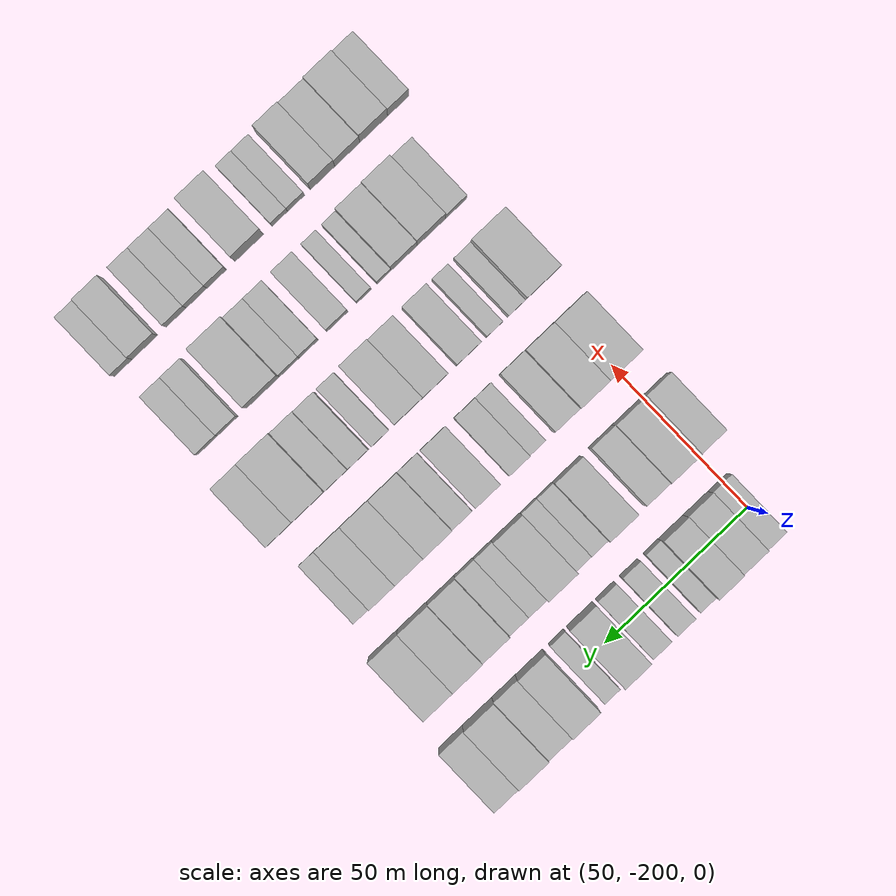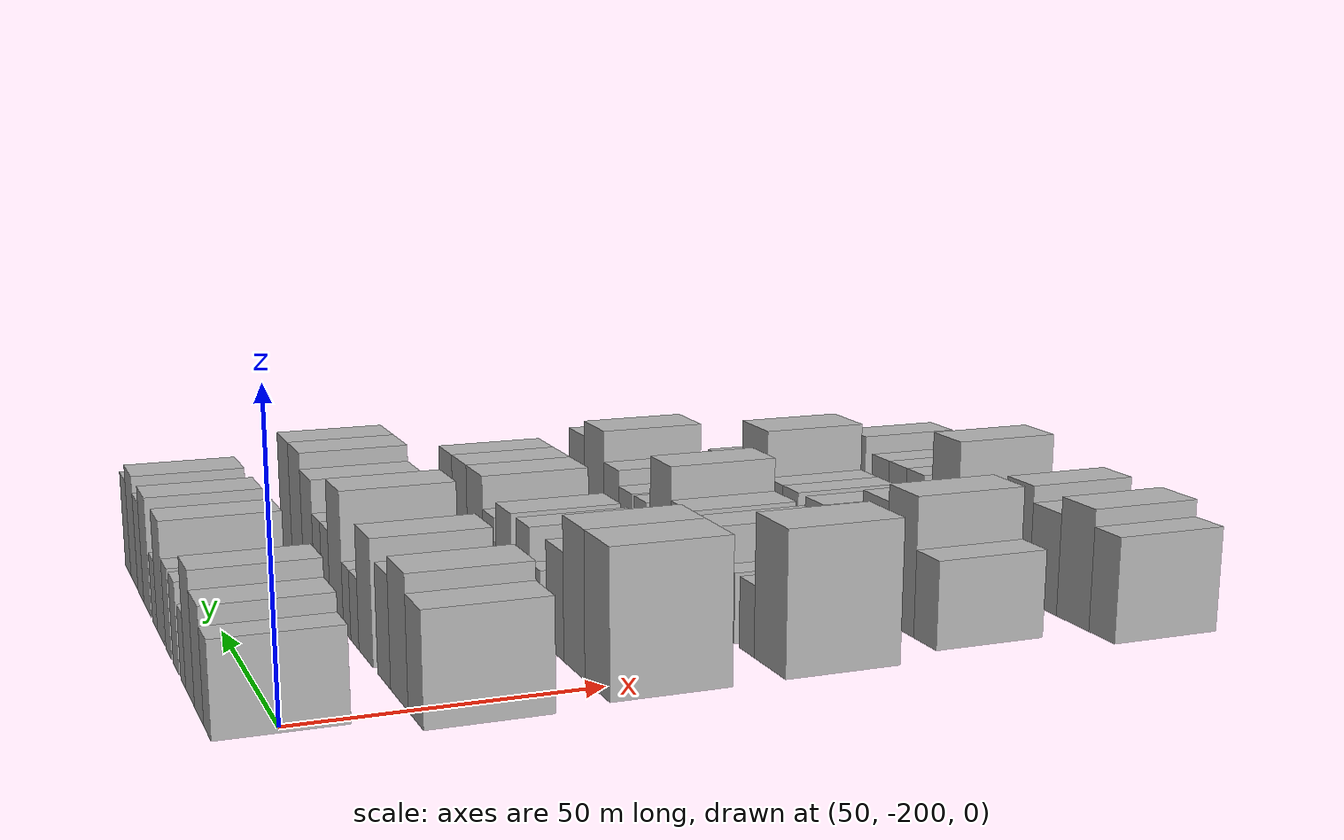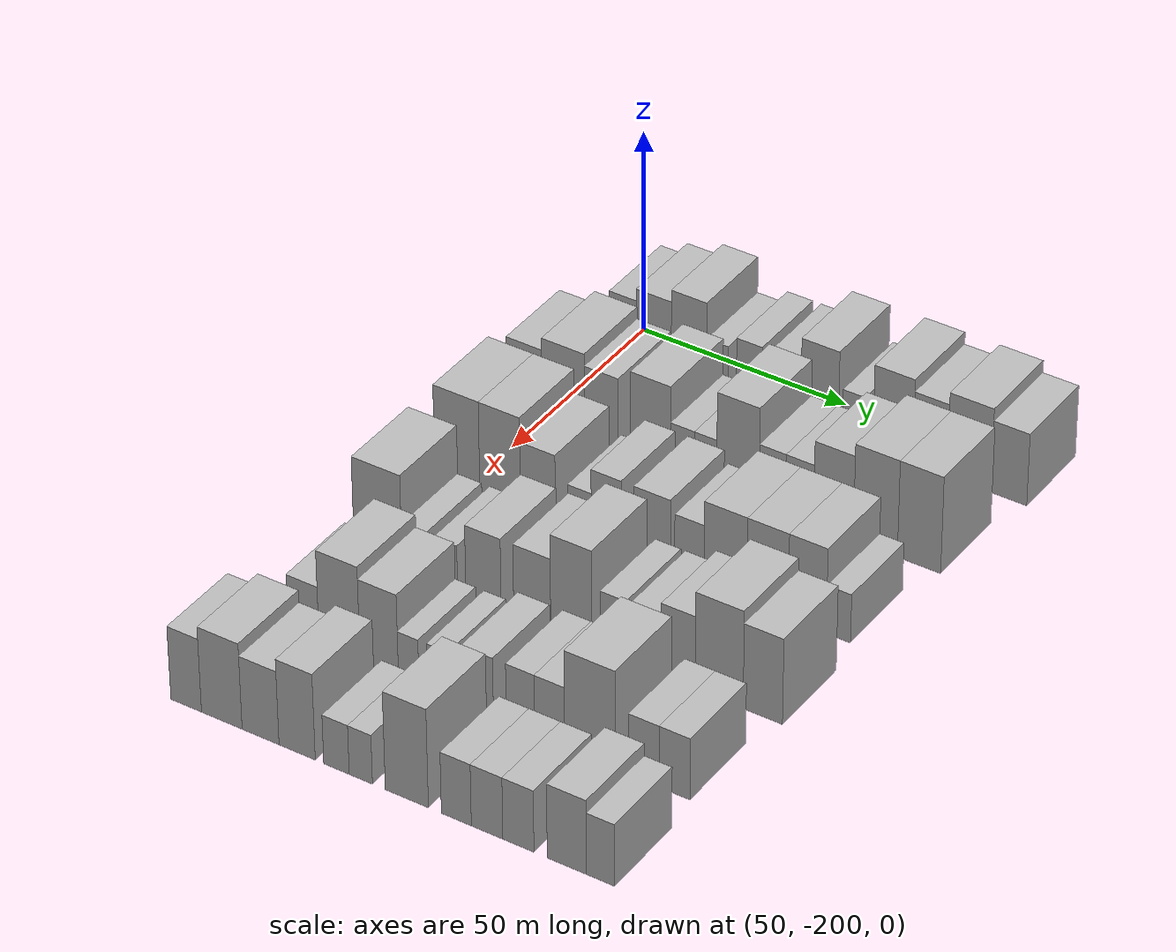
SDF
<sdf version="1.6">
 <world name="default">
  <model name="building_35">
   <static>1</static>
   <pose>50.0000 -198.8877 0 0.000000 0.000000 0.000000</pose>
   <link name="link">
    <pose>0 0 7.50 0 0 0</pose>
    <collision name="collision"><geometry><box><size>20.0000 6.6442 15.0000</size></box></geometry></collision>
    <visual name="visual">
     <cast_shadows>0</cast_shadows>
     <geometry><box><size>20.0000 6.6442 15.0000</size></box></geometry>
     <material>
      <script>
       <uri>model://HANNAS_wall/materials/scripts</uri>
       <uri>model://HANNAS_wall/materials/textures</uri>
       <name>vrc/HANNAS_wall</name>
      </script>
     </material>
    </visual>
   </link>
  </model>
  <model name="building_36">
   <static>1</static>
   <pose>50.0000 -191.1998 0 0.000000 0.000000 0.000000</pose>
   <link name="link">
    <pose>0 0 9.00 0 0 0</pose>
    <collision name="collision"><geometry><box><size>20.0000 8.7317 18.0000</size></box></geometry></collision>
    <visual name="visual">
     <cast_shadows>0</cast_shadows>
     <geometry><box><size>20.0000 8.7317 18.0000</size></box></geometry>
     <material>
      <script>
       <uri>model://HANNAS_wall/materials/scripts</uri>
       <uri>model://HANNAS_wall/materials/textures</uri>
       <name>vrc/HANNAS_wall</name>
      </script>
     </material>
    </visual>
   </link>
  </model>
  <model name="building_37">
   <static>1</static>
   <pose>50.0000 -182.4691 0 0.000000 0.000000 0.000000</pose>
   <link name="link">
    <pose>0 0 10.50 0 0 0</pose>
    <collision name="collision"><geometry><box><size>20.0000 8.7298 21.0000</size></box></geometry></collision>
    <visual name="visual">
     <cast_shadows>0</cast_shadows>
     <geometry><box><size>20.0000 8.7298 21.0000</size></box></geometry>
     <material>
      <script>
       <uri>model://HANNAS_wall/materials/scripts</uri>
       <uri>model://HANNAS_wall/materials/textures</uri>
       <name>vrc/HANNAS_wall</name>
      </script>
     </material>
    </visual>
   </link>
  </model>
  <model name="building_38">
   <static>1</static>
   <pose>50.0000 -175.4326 0 0.000000 0.000000 0.000000</pose>
   <link name="link">
    <pose>0 0 6.00 0 0 0</pose>
    <collision name="collision"><geometry><box><size>20.0000 5.3432 12.0000</size></box></geometry></collision>
    <visual name="visual">
     <cast_shadows>0</cast_shadows>
     <geometry><box><size>20.0000 5.3432 12.0000</size></box></geometry>
     <material>
      <script>
       <uri>model://HANNAS_wall/materials/scripts</uri>
       <uri>model://HANNAS_wall/materials/textures</uri>
       <name>vrc/HANNAS_wall</name>
      </script>
     </material>
    </visual>
   </link>
  </model>
  <model name="building_39">
   <static>1</static>
   <pose>50.0000 -167.6293 0 0.000000 0.000000 0.000000</pose>
   <link name="link">
    <pose>0 0 7.50 0 0 0</pose>
    <collision name="collision"><geometry><box><size>20.0000 6.2633 15.0000</size></box></geometry></collision>
    <visual name="visual">
     <cast_shadows>0</cast_shadows>
     <geometry><box><size>20.0000 6.2633 15.0000</size></box></geometry>
     <material>
      <script>
       <uri>model://HANNAS_wall/materials/scripts</uri>
       <uri>model://HANNAS_wall/materials/textures</uri>
       <name>vrc/HANNAS_wall</name>
      </script>
     </material>
    </visual>
   </link>
  </model>
  <model name="building_40">
   <static>1</static>
   <pose>50.0000 -159.2692 0 0.000000 0.000000 0.000000</pose>
   <link name="link">
    <pose>0 0 7.50 0 0 0</pose>
    <collision name="collision"><geometry><box><size>20.0000 6.4569 15.0000</size></box></geometry></collision>
    <visual name="visual">
     <cast_shadows>0</cast_shadows>
     <geometry><box><size>20.0000 6.4569 15.0000</size></box></geometry>
     <material>
      <script>
       <uri>model://HANNAS_wall/materials/scripts</uri>
       <uri>model://HANNAS_wall/materials/textures</uri>
       <name>vrc/HANNAS_wall</name>
      </script>
     </material>
    </visual>
   </link>
  </model>
  <model name="building_41">
   <static>1</static>
   <pose>50.0000 -150.4861 0 0.000000 0.000000 0.000000</pose>
   <link name="link">
    <pose>0 0 10.50 0 0 0</pose>
    <collision name="collision"><geometry><box><size>20.0000 9.1092 21.0000</size></box></geometry></collision>
    <visual name="visual">
     <cast_shadows>0</cast_shadows>
     <geometry><box><size>20.0000 9.1092 21.0000</size></box></geometry>
     <material>
      <script>
       <uri>model://HANNAS_wall/materials/scripts</uri>
       <uri>model://HANNAS_wall/materials/textures</uri>
       <name>vrc/HANNAS_wall</name>
      </script>
     </material>
    </visual>
   </link>
  </model>
  <model name="building_42">
   <static>1</static>
   <pose>50.0000 -142.2494 0 0.000000 0.000000 0.000000</pose>
   <link name="link">
    <pose>0 0 6.00 0 0 0</pose>
    <collision name="collision"><geometry><box><size>20.0000 5.3642 12.0000</size></box></geometry></collision>
    <visual name="visual">
     <cast_shadows>0</cast_shadows>
     <geometry><box><size>20.0000 5.3642 12.0000</size></box></geometry>
     <material>
      <script>
       <uri>model://HANNAS_wall/materials/scripts</uri>
       <uri>model://HANNAS_wall/materials/textures</uri>
       <name>vrc/HANNAS_wall</name>
      </script>
     </material>
    </visual>
   </link>
  </model>
  <model name="building_43">
   <static>1</static>
   <pose>50.0000 -132.7815 0 0.000000 0.000000 0.000000</pose>
   <link name="link">
    <pose>0 0 10.50 0 0 0</pose>
    <collision name="collision"><geometry><box><size>20.0000 9.5715 21.0000</size></box></geometry></collision>
    <visual name="visual">
     <cast_shadows>0</cast_shadows>
     <geometry><box><size>20.0000 9.5715 21.0000</size></box></geometry>
     <material>
      <script>
       <uri>model://HANNAS_wall/materials/scripts</uri>
       <uri>model://HANNAS_wall/materials/textures</uri>
       <name>vrc/HANNAS_wall</name>
      </script>
     </material>
    </visual>
   </link>
  </model>
  <model name="building_44">
   <static>1</static>
   <pose>50.0000 -123.9047 0 0.000000 0.000000 0.000000</pose>
   <link name="link">
    <pose>0 0 9.00 0 0 0</pose>
    <collision name="collision"><geometry><box><size>20.0000 8.1821 18.0000</size></box></geometry></collision>
    <visual name="visual">
     <cast_shadows>0</cast_shadows>
     <geometry><box><size>20.0000 8.1821 18.0000</size></box></geometry>
     <material>
      <script>
       <uri>model://HANNAS_wall/materials/scripts</uri>
       <uri>model://HANNAS_wall/materials/textures</uri>
       <name>vrc/HANNAS_wall</name>
      </script>
     </material>
    </visual>
   </link>
  </model>
  <model name="building_45">
   <static>1</static>
   <pose>50.0000 -114.6508 0 0.000000 0.000000 0.000000</pose>
   <link name="link">
    <pose>0 0 10.50 0 0 0</pose>
    <collision name="collision"><geometry><box><size>20.0000 10.3257 21.0000</size></box></geometry></collision>
    <visual name="visual">
     <cast_shadows>0</cast_shadows>
     <geometry><box><size>20.0000 10.3257 21.0000</size></box></geometry>
     <material>
      <script>
       <uri>model://HANNAS_wall/materials/scripts</uri>
       <uri>model://HANNAS_wall/materials/textures</uri>
       <name>vrc/HANNAS_wall</name>
      </script>
     </material>
    </visual>
   </link>
  </model>
  <model name="building_46">
   <static>1</static>
   <pose>50.0000 -105.2731 0 0.000000 0.000000 0.000000</pose>
   <link name="link">
    <pose>0 0 9.00 0 0 0</pose>
    <collision name="collision"><geometry><box><size>20.0000 8.4298 18.0000</size></box></geometry></collision>
    <visual name="visual">
     <cast_shadows>0</cast_shadows>
     <geometry><box><size>20.0000 8.4298 18.0000</size></box></geometry>
     <material>
      <script>
       <uri>model://HANNAS_wall/materials/scripts</uri>
       <uri>model://HANNAS_wall/materials/textures</uri>
       <name>vrc/HANNAS_wall</name>
      </script>
     </material>
    </visual>
   </link>
  </model>
  <model name="building_153">
   <static>1</static>
   <pose>79.0000 -204.3368 0 0.000000 0.000000 0.000000</pose>
   <link name="link">
    <pose>0 0 9.00 0 0 0</pose>
    <collision name="collision"><geometry><box><size>20.0000 8.7443 18.0000</size></box></geometry></collision>
    <visual name="visual">
     <cast_shadows>0</cast_shadows>
     <geometry><box><size>20.0000 8.7443 18.0000</size></box></geometry>
     <material>
      <script>
       <uri>model://HANNAS_wall/materials/scripts</uri>
       <uri>model://HANNAS_wall/materials/textures</uri>
       <name>vrc/HANNAS_wall</name>
      </script>
     </material>
    </visual>
   </link>
  </model>
  <model name="building_154">
   <static>1</static>
   <pose>79.0000 -194.7176 0 0.000000 0.000000 0.000000</pose>
   <link name="link">
    <pose>0 0 10.50 0 0 0</pose>
    <collision name="collision"><geometry><box><size>20.0000 10.4941 21.0000</size></box></geometry></collision>
    <visual name="visual">
     <cast_shadows>0</cast_shadows>
     <geometry><box><size>20.0000 10.4941 21.0000</size></box></geometry>
     <material>
      <script>
       <uri>model://HANNAS_wall/materials/scripts</uri>
       <uri>model://HANNAS_wall/materials/textures</uri>
       <name>vrc/HANNAS_wall</name>
      </script>
     </material>
    </visual>
   </link>
  </model>
  <model name="building_155">
   <static>1</static>
   <pose>79.0000 -185.3284 0 0.000000 0.000000 0.000000</pose>
   <link name="link">
    <pose>0 0 9.00 0 0 0</pose>
    <collision name="collision"><geometry><box><size>20.0000 8.2842 18.0000</size></box></geometry></collision>
    <visual name="visual">
     <cast_shadows>0</cast_shadows>
     <geometry><box><size>20.0000 8.2842 18.0000</size></box></geometry>
     <material>
      <script>
       <uri>model://HANNAS_wall/materials/scripts</uri>
       <uri>model://HANNAS_wall/materials/textures</uri>
       <name>vrc/HANNAS_wall</name>
      </script>
     </material>
    </visual>
   </link>
  </model>
  <model name="building_156">
   <static>1</static>
   <pose>79.0000 -173.3104 0 0.000000 0.000000 0.000000</pose>
   <link name="link">
    <pose>0 0 10.50 0 0 0</pose>
    <collision name="collision"><geometry><box><size>20.0000 9.7519 21.0000</size></box></geometry></collision>
    <visual name="visual">
     <cast_shadows>0</cast_shadows>
     <geometry><box><size>20.0000 9.7519 21.0000</size></box></geometry>
     <material>
      <script>
       <uri>model://HANNAS_wall/materials/scripts</uri>
       <uri>model://HANNAS_wall/materials/textures</uri>
       <name>vrc/HANNAS_wall</name>
      </script>
     </material>
    </visual>
   </link>
  </model>
  <model name="building_157">
   <static>1</static>
   <pose>79.0000 -165.5521 0 0.000000 0.000000 0.000000</pose>
   <link name="link">
    <pose>0 0 6.00 0 0 0</pose>
    <collision name="collision"><geometry><box><size>20.0000 5.7646 12.0000</size></box></geometry></collision>
    <visual name="visual">
     <cast_shadows>0</cast_shadows>
     <geometry><box><size>20.0000 5.7646 12.0000</size></box></geometry>
     <material>
      <script>
       <uri>model://HANNAS_wall/materials/scripts</uri>
       <uri>model://HANNAS_wall/materials/textures</uri>
       <name>vrc/HANNAS_wall</name>
      </script>
     </material>
    </visual>
   </link>
  </model>
  <model name="building_158">
   <static>1</static>
   <pose>79.0000 -159.9770 0 0.000000 0.000000 0.000000</pose>
   <link name="link">
    <pose>0 0 6.00 0 0 0</pose>
    <collision name="collision"><geometry><box><size>20.0000 5.3857 12.0000</size></box></geometry></collision>
    <visual name="visual">
     <cast_shadows>0</cast_shadows>
     <geometry><box><size>20.0000 5.3857 12.0000</size></box></geometry>
     <material>
      <script>
       <uri>model://HANNAS_wall/materials/scripts</uri>
       <uri>model://HANNAS_wall/materials/textures</uri>
       <name>vrc/HANNAS_wall</name>
      </script>
     </material>
    </visual>
   </link>
  </model>
  <model name="building_159">
   <static>1</static>
   <pose>79.0000 -152.2044 0 0.000000 0.000000 0.000000</pose>
   <link name="link">
    <pose>0 0 12.00 0 0 0</pose>
    <collision name="collision"><geometry><box><size>20.0000 10.1595 24.0000</size></box></geometry></collision>
    <visual name="visual">
     <cast_shadows>0</cast_shadows>
     <geometry><box><size>20.0000 10.1595 24.0000</size></box></geometry>
     <material>
      <script>
       <uri>model://HANNAS_wall/materials/scripts</uri>
       <uri>model://HANNAS_wall/materials/textures</uri>
       <name>vrc/HANNAS_wall</name>
      </script>
     </material>
    </visual>
   </link>
  </model>
  <model name="building_160">
   <static>1</static>
   <pose>79.0000 -143.9554 0 0.000000 0.000000 0.000000</pose>
   <link name="link">
    <pose>0 0 7.50 0 0 0</pose>
    <collision name="collision"><geometry><box><size>20.0000 6.3385 15.0000</size></box></geometry></collision>
    <visual name="visual">
     <cast_shadows>0</cast_shadows>
     <geometry><box><size>20.0000 6.3385 15.0000</size></box></geometry>
     <material>
      <script>
       <uri>model://HANNAS_wall/materials/scripts</uri>
       <uri>model://HANNAS_wall/materials/textures</uri>
       <name>vrc/HANNAS_wall</name>
      </script>
     </material>
    </visual>
   </link>
  </model>
  <model name="building_161">
   <static>1</static>
   <pose>79.0000 -137.4509 0 0.000000 0.000000 0.000000</pose>
   <link name="link">
    <pose>0 0 7.50 0 0 0</pose>
    <collision name="collision"><geometry><box><size>20.0000 6.6704 15.0000</size></box></geometry></collision>
    <visual name="visual">
     <cast_shadows>0</cast_shadows>
     <geometry><box><size>20.0000 6.6704 15.0000</size></box></geometry>
     <material>
      <script>
       <uri>model://HANNAS_wall/materials/scripts</uri>
       <uri>model://HANNAS_wall/materials/textures</uri>
       <name>vrc/HANNAS_wall</name>
      </script>
     </material>
    </visual>
   </link>
  </model>
  <model name="building_162">
   <static>1</static>
   <pose>79.0000 -129.4091 0 0.000000 0.000000 0.000000</pose>
   <link name="link">
    <pose>0 0 10.50 0 0 0</pose>
    <collision name="collision"><geometry><box><size>20.0000 9.4132 21.0000</size></box></geometry></collision>
    <visual name="visual">
     <cast_shadows>0</cast_shadows>
     <geometry><box><size>20.0000 9.4132 21.0000</size></box></geometry>
     <material>
      <script>
       <uri>model://HANNAS_wall/materials/scripts</uri>
       <uri>model://HANNAS_wall/materials/textures</uri>
       <name>vrc/HANNAS_wall</name>
      </script>
     </material>
    </visual>
   </link>
  </model>
  <model name="building_163">
   <static>1</static>
   <pose>79.0000 -119.5269 0 0.000000 0.000000 0.000000</pose>
   <link name="link">
    <pose>0 0 12.00 0 0 0</pose>
    <collision name="collision"><geometry><box><size>20.0000 10.3511 24.0000</size></box></geometry></collision>
    <visual name="visual">
     <cast_shadows>0</cast_shadows>
     <geometry><box><size>20.0000 10.3511 24.0000</size></box></geometry>
     <material>
      <script>
       <uri>model://HANNAS_wall/materials/scripts</uri>
       <uri>model://HANNAS_wall/materials/textures</uri>
       <name>vrc/HANNAS_wall</name>
      </script>
     </material>
    </visual>
   </link>
  </model>
  <model name="building_164">
   <static>1</static>
   <pose>79.0000 -109.3065 0 0.000000 0.000000 0.000000</pose>
   <link name="link">
    <pose>0 0 12.00 0 0 0</pose>
    <collision name="collision"><geometry><box><size>20.0000 10.0896 24.0000</size></box></geometry></collision>
    <visual name="visual">
     <cast_shadows>0</cast_shadows>
     <geometry><box><size>20.0000 10.0896 24.0000</size></box></geometry>
     <material>
      <script>
       <uri>model://HANNAS_wall/materials/scripts</uri>
       <uri>model://HANNAS_wall/materials/textures</uri>
       <name>vrc/HANNAS_wall</name>
      </script>
     </material>
    </visual>
   </link>
  </model>
  <model name="building_269">
   <static>1</static>
   <pose>108.0000 -201.4693 0 0.000000 0.000000 0.000000</pose>
   <link name="link">
    <pose>0 0 12.00 0 0 0</pose>
    <collision name="collision"><geometry><box><size>20.0000 11.0578 24.0000</size></box></geometry></collision>
    <visual name="visual">
     <cast_shadows>0</cast_shadows>
     <geometry><box><size>20.0000 11.0578 24.0000</size></box></geometry>
     <material>
      <script>
       <uri>model://HANNAS_wall/materials/scripts</uri>
       <uri>model://HANNAS_wall/materials/textures</uri>
       <name>vrc/HANNAS_wall</name>
      </script>
     </material>
    </visual>
   </link>
  </model>
  <model name="building_270">
   <static>1</static>
   <pose>108.0000 -190.9619 0 0.000000 0.000000 0.000000</pose>
   <link name="link">
    <pose>0 0 12.00 0 0 0</pose>
    <collision name="collision"><geometry><box><size>20.0000 9.9569 24.0000</size></box></geometry></collision>
    <visual name="visual">
     <cast_shadows>0</cast_shadows>
     <geometry><box><size>20.0000 9.9569 24.0000</size></box></geometry>
     <material>
      <script>
       <uri>model://HANNAS_wall/materials/scripts</uri>
       <uri>model://HANNAS_wall/materials/textures</uri>
       <name>vrc/HANNAS_wall</name>
      </script>
     </material>
    </visual>
   </link>
  </model>
  <model name="building_271">
   <static>1</static>
   <pose>108.0000 -181.7370 0 0.000000 0.000000 0.000000</pose>
   <link name="link">
    <pose>0 0 9.00 0 0 0</pose>
    <collision name="collision"><geometry><box><size>20.0000 8.4927 18.0000</size></box></geometry></collision>
    <visual name="visual">
     <cast_shadows>0</cast_shadows>
     <geometry><box><size>20.0000 8.4927 18.0000</size></box></geometry>
     <material>
      <script>
       <uri>model://HANNAS_wall/materials/scripts</uri>
       <uri>model://HANNAS_wall/materials/textures</uri>
       <name>vrc/HANNAS_wall</name>
      </script>
     </material>
    </visual>
   </link>
  </model>
  <model name="building_272">
   <static>1</static>
   <pose>108.0000 -171.6626 0 0.000000 0.000000 0.000000</pose>
   <link name="link">
    <pose>0 0 6.00 0 0 0</pose>
    <collision name="collision"><geometry><box><size>20.0000 5.6562 12.0000</size></box></geometry></collision>
    <visual name="visual">
     <cast_shadows>0</cast_shadows>
     <geometry><box><size>20.0000 5.6562 12.0000</size></box></geometry>
     <material>
      <script>
       <uri>model://HANNAS_wall/materials/scripts</uri>
       <uri>model://HANNAS_wall/materials/textures</uri>
       <name>vrc/HANNAS_wall</name>
      </script>
     </material>
    </visual>
   </link>
  </model>
  <model name="building_273">
   <static>1</static>
   <pose>108.0000 -165.2278 0 0.000000 0.000000 0.000000</pose>
   <link name="link">
    <pose>0 0 9.00 0 0 0</pose>
    <collision name="collision"><geometry><box><size>20.0000 7.2133 18.0000</size></box></geometry></collision>
    <visual name="visual">
     <cast_shadows>0</cast_shadows>
     <geometry><box><size>20.0000 7.2133 18.0000</size></box></geometry>
     <material>
      <script>
       <uri>model://HANNAS_wall/materials/scripts</uri>
       <uri>model://HANNAS_wall/materials/textures</uri>
       <name>vrc/HANNAS_wall</name>
      </script>
     </material>
    </visual>
   </link>
  </model>
  <model name="building_274">
   <static>1</static>
   <pose>108.0000 -154.2668 0 0.000000 0.000000 0.000000</pose>
   <link name="link">
    <pose>0 0 9.00 0 0 0</pose>
    <collision name="collision"><geometry><box><size>20.0000 8.7087 18.0000</size></box></geometry></collision>
    <visual name="visual">
     <cast_shadows>0</cast_shadows>
     <geometry><box><size>20.0000 8.7087 18.0000</size></box></geometry>
     <material>
      <script>
       <uri>model://HANNAS_wall/materials/scripts</uri>
       <uri>model://HANNAS_wall/materials/textures</uri>
       <name>vrc/HANNAS_wall</name>
      </script>
     </material>
    </visual>
   </link>
  </model>
  <model name="building_275">
   <static>1</static>
   <pose>108.0000 -145.4290 0 0.000000 0.000000 0.000000</pose>
   <link name="link">
    <pose>0 0 7.50 0 0 0</pose>
    <collision name="collision"><geometry><box><size>20.0000 6.9668 15.0000</size></box></geometry></collision>
    <visual name="visual">
     <cast_shadows>0</cast_shadows>
     <geometry><box><size>20.0000 6.9668 15.0000</size></box></geometry>
     <material>
      <script>
       <uri>model://HANNAS_wall/materials/scripts</uri>
       <uri>model://HANNAS_wall/materials/textures</uri>
       <name>vrc/HANNAS_wall</name>
      </script>
     </material>
    </visual>
   </link>
  </model>
  <model name="building_276">
   <static>1</static>
   <pose>108.0000 -136.9268 0 0.000000 0.000000 0.000000</pose>
   <link name="link">
    <pose>0 0 10.50 0 0 0</pose>
    <collision name="collision"><geometry><box><size>20.0000 10.0376 21.0000</size></box></geometry></collision>
    <visual name="visual">
     <cast_shadows>0</cast_shadows>
     <geometry><box><size>20.0000 10.0376 21.0000</size></box></geometry>
     <material>
      <script>
       <uri>model://HANNAS_wall/materials/scripts</uri>
       <uri>model://HANNAS_wall/materials/textures</uri>
       <name>vrc/HANNAS_wall</name>
      </script>
     </material>
    </visual>
   </link>
  </model>
  <model name="building_277">
   <static>1</static>
   <pose>108.0000 -127.0730 0 0.000000 0.000000 0.000000</pose>
   <link name="link">
    <pose>0 0 10.50 0 0 0</pose>
    <collision name="collision"><geometry><box><size>20.0000 9.6702 21.0000</size></box></geometry></collision>
    <visual name="visual">
     <cast_shadows>0</cast_shadows>
     <geometry><box><size>20.0000 9.6702 21.0000</size></box></geometry>
     <material>
      <script>
       <uri>model://HANNAS_wall/materials/scripts</uri>
       <uri>model://HANNAS_wall/materials/textures</uri>
       <name>vrc/HANNAS_wall</name>
      </script>
     </material>
    </visual>
   </link>
  </model>
  <model name="building_278">
   <static>1</static>
   <pose>108.0000 -117.8108 0 0.000000 0.000000 0.000000</pose>
   <link name="link">
    <pose>0 0 10.50 0 0 0</pose>
    <collision name="collision"><geometry><box><size>20.0000 8.8542 21.0000</size></box></geometry></collision>
    <visual name="visual">
     <cast_shadows>0</cast_shadows>
     <geometry><box><size>20.0000 8.8542 21.0000</size></box></geometry>
     <material>
      <script>
       <uri>model://HANNAS_wall/materials/scripts</uri>
       <uri>model://HANNAS_wall/materials/textures</uri>
       <name>vrc/HANNAS_wall</name>
      </script>
     </material>
    </visual>
   </link>
  </model>
  <model name="building_279">
   <static>1</static>
   <pose>108.0000 -110.5757 0 0.000000 0.000000 0.000000</pose>
   <link name="link">
    <pose>0 0 6.00 0 0 0</pose>
    <collision name="collision"><geometry><box><size>20.0000 5.6160 12.0000</size></box></geometry></collision>
    <visual name="visual">
     <cast_shadows>0</cast_shadows>
     <geometry><box><size>20.0000 5.6160 12.0000</size></box></geometry>
     <material>
      <script>
       <uri>model://HANNAS_wall/materials/scripts</uri>
       <uri>model://HANNAS_wall/materials/textures</uri>
       <name>vrc/HANNAS_wall</name>
      </script>
     </material>
    </visual>
   </link>
  </model>
  <model name="building_385">
   <static>1</static>
   <pose>137.0000 -200.9318 0 0.000000 0.000000 0.000000</pose>
   <link name="link">
    <pose>0 0 12.00 0 0 0</pose>
    <collision name="collision"><geometry><box><size>20.0000 11.7179 24.0000</size></box></geometry></collision>
    <visual name="visual">
     <cast_shadows>0</cast_shadows>
     <geometry><box><size>20.0000 11.7179 24.0000</size></box></geometry>
     <material>
      <script>
       <uri>model://HANNAS_wall/materials/scripts</uri>
       <uri>model://HANNAS_wall/materials/textures</uri>
       <name>vrc/HANNAS_wall</name>
      </script>
     </material>
    </visual>
   </link>
  </model>
  <model name="building_386">
   <static>1</static>
   <pose>137.0000 -192.1546 0 0.000000 0.000000 0.000000</pose>
   <link name="link">
    <pose>0 0 6.00 0 0 0</pose>
    <collision name="collision"><geometry><box><size>20.0000 5.8364 12.0000</size></box></geometry></collision>
    <visual name="visual">
     <cast_shadows>0</cast_shadows>
     <geometry><box><size>20.0000 5.8364 12.0000</size></box></geometry>
     <material>
      <script>
       <uri>model://HANNAS_wall/materials/scripts</uri>
       <uri>model://HANNAS_wall/materials/textures</uri>
       <name>vrc/HANNAS_wall</name>
      </script>
     </material>
    </visual>
   </link>
  </model>
  <model name="building_387">
   <static>1</static>
   <pose>137.0000 -184.4595 0 0.000000 0.000000 0.000000</pose>
   <link name="link">
    <pose>0 0 6.00 0 0 0</pose>
    <collision name="collision"><geometry><box><size>20.0000 5.5538 12.0000</size></box></geometry></collision>
    <visual name="visual">
     <cast_shadows>0</cast_shadows>
     <geometry><box><size>20.0000 5.5538 12.0000</size></box></geometry>
     <material>
      <script>
       <uri>model://HANNAS_wall/materials/scripts</uri>
       <uri>model://HANNAS_wall/materials/textures</uri>
       <name>vrc/HANNAS_wall</name>
      </script>
     </material>
    </visual>
   </link>
  </model>
  <model name="building_388">
   <static>1</static>
   <pose>137.0000 -175.4524 0 0.000000 0.000000 0.000000</pose>
   <link name="link">
    <pose>0 0 9.00 0 0 0</pose>
    <collision name="collision"><geometry><box><size>20.0000 8.4604 18.0000</size></box></geometry></collision>
    <visual name="visual">
     <cast_shadows>0</cast_shadows>
     <geometry><box><size>20.0000 8.4604 18.0000</size></box></geometry>
     <material>
      <script>
       <uri>model://HANNAS_wall/materials/scripts</uri>
       <uri>model://HANNAS_wall/materials/textures</uri>
       <name>vrc/HANNAS_wall</name>
      </script>
     </material>
    </visual>
   </link>
  </model>
  <model name="building_389">
   <static>1</static>
   <pose>137.0000 -163.8210 0 0.000000 0.000000 0.000000</pose>
   <link name="link">
    <pose>0 0 9.00 0 0 0</pose>
    <collision name="collision"><geometry><box><size>20.0000 8.8023 18.0000</size></box></geometry></collision>
    <visual name="visual">
     <cast_shadows>0</cast_shadows>
     <geometry><box><size>20.0000 8.8023 18.0000</size></box></geometry>
     <material>
      <script>
       <uri>model://HANNAS_wall/materials/scripts</uri>
       <uri>model://HANNAS_wall/materials/textures</uri>
       <name>vrc/HANNAS_wall</name>
      </script>
     </material>
    </visual>
   </link>
  </model>
  <model name="building_390">
   <static>1</static>
   <pose>137.0000 -154.5624 0 0.000000 0.000000 0.000000</pose>
   <link name="link">
    <pose>0 0 12.00 0 0 0</pose>
    <collision name="collision"><geometry><box><size>20.0000 9.7149 24.0000</size></box></geometry></collision>
    <visual name="visual">
     <cast_shadows>0</cast_shadows>
     <geometry><box><size>20.0000 9.7149 24.0000</size></box></geometry>
     <material>
      <script>
       <uri>model://HANNAS_wall/materials/scripts</uri>
       <uri>model://HANNAS_wall/materials/textures</uri>
       <name>vrc/HANNAS_wall</name>
      </script>
     </material>
    </visual>
   </link>
  </model>
  <model name="building_391">
   <static>1</static>
   <pose>137.0000 -144.6874 0 0.000000 0.000000 0.000000</pose>
   <link name="link">
    <pose>0 0 7.50 0 0 0</pose>
    <collision name="collision"><geometry><box><size>20.0000 6.0352 15.0000</size></box></geometry></collision>
    <visual name="visual">
     <cast_shadows>0</cast_shadows>
     <geometry><box><size>20.0000 6.0352 15.0000</size></box></geometry>
     <material>
      <script>
       <uri>model://HANNAS_wall/materials/scripts</uri>
       <uri>model://HANNAS_wall/materials/textures</uri>
       <name>vrc/HANNAS_wall</name>
      </script>
     </material>
    </visual>
   </link>
  </model>
  <model name="building_392">
   <static>1</static>
   <pose>137.0000 -137.0763 0 0.000000 0.000000 0.000000</pose>
   <link name="link">
    <pose>0 0 7.50 0 0 0</pose>
    <collision name="collision"><geometry><box><size>20.0000 7.1870 15.0000</size></box></geometry></collision>
    <visual name="visual">
     <cast_shadows>0</cast_shadows>
     <geometry><box><size>20.0000 7.1870 15.0000</size></box></geometry>
     <material>
      <script>
       <uri>model://HANNAS_wall/materials/scripts</uri>
       <uri>model://HANNAS_wall/materials/textures</uri>
       <name>vrc/HANNAS_wall</name>
      </script>
     </material>
    </visual>
   </link>
  </model>
  <model name="building_393">
   <static>1</static>
   <pose>137.0000 -129.5542 0 0.000000 0.000000 0.000000</pose>
   <link name="link">
    <pose>0 0 9.00 0 0 0</pose>
    <collision name="collision"><geometry><box><size>20.0000 7.8572 18.0000</size></box></geometry></collision>
    <visual name="visual">
     <cast_shadows>0</cast_shadows>
     <geometry><box><size>20.0000 7.8572 18.0000</size></box></geometry>
     <material>
      <script>
       <uri>model://HANNAS_wall/materials/scripts</uri>
       <uri>model://HANNAS_wall/materials/textures</uri>
       <name>vrc/HANNAS_wall</name>
      </script>
     </material>
    </visual>
   </link>
  </model>
  <model name="building_394">
   <static>1</static>
   <pose>137.0000 -120.1018 0 0.000000 0.000000 0.000000</pose>
   <link name="link">
    <pose>0 0 12.00 0 0 0</pose>
    <collision name="collision"><geometry><box><size>20.0000 11.0476 24.0000</size></box></geometry></collision>
    <visual name="visual">
     <cast_shadows>0</cast_shadows>
     <geometry><box><size>20.0000 11.0476 24.0000</size></box></geometry>
     <material>
      <script>
       <uri>model://HANNAS_wall/materials/scripts</uri>
       <uri>model://HANNAS_wall/materials/textures</uri>
       <name>vrc/HANNAS_wall</name>
      </script>
     </material>
    </visual>
   </link>
  </model>
  <model name="building_395">
   <static>1</static>
   <pose>137.0000 -110.0872 0 0.000000 0.000000 0.000000</pose>
   <link name="link">
    <pose>0 0 10.50 0 0 0</pose>
    <collision name="collision"><geometry><box><size>20.0000 8.9817 21.0000</size></box></geometry></collision>
    <visual name="visual">
     <cast_shadows>0</cast_shadows>
     <geometry><box><size>20.0000 8.9817 21.0000</size></box></geometry>
     <material>
      <script>
       <uri>model://HANNAS_wall/materials/scripts</uri>
       <uri>model://HANNAS_wall/materials/textures</uri>
       <name>vrc/HANNAS_wall</name>
      </script>
     </material>
    </visual>
   </link>
  </model>
  <model name="building_501">
   <static>1</static>
   <pose>166.0000 -198.6394 0 0.000000 0.000000 0.000000</pose>
   <link name="link">
    <pose>0 0 7.50 0 0 0</pose>
    <collision name="collision"><geometry><box><size>20.0000 7.4756 15.0000</size></box></geometry></collision>
    <visual name="visual">
     <cast_shadows>0</cast_shadows>
     <geometry><box><size>20.0000 7.4756 15.0000</size></box></geometry>
     <material>
      <script>
       <uri>model://HANNAS_wall/materials/scripts</uri>
       <uri>model://HANNAS_wall/materials/textures</uri>
       <name>vrc/HANNAS_wall</name>
      </script>
     </material>
    </visual>
   </link>
  </model>
  <model name="building_502">
   <static>1</static>
   <pose>166.0000 -189.9845 0 0.000000 0.000000 0.000000</pose>
   <link name="link">
    <pose>0 0 12.00 0 0 0</pose>
    <collision name="collision"><geometry><box><size>20.0000 9.8343 24.0000</size></box></geometry></collision>
    <visual name="visual">
     <cast_shadows>0</cast_shadows>
     <geometry><box><size>20.0000 9.8343 24.0000</size></box></geometry>
     <material>
      <script>
       <uri>model://HANNAS_wall/materials/scripts</uri>
       <uri>model://HANNAS_wall/materials/textures</uri>
       <name>vrc/HANNAS_wall</name>
      </script>
     </material>
    </visual>
   </link>
  </model>
  <model name="building_503">
   <static>1</static>
   <pose>166.0000 -180.4951 0 0.000000 0.000000 0.000000</pose>
   <link name="link">
    <pose>0 0 10.50 0 0 0</pose>
    <collision name="collision"><geometry><box><size>20.0000 9.1446 21.0000</size></box></geometry></collision>
    <visual name="visual">
     <cast_shadows>0</cast_shadows>
     <geometry><box><size>20.0000 9.1446 21.0000</size></box></geometry>
     <material>
      <script>
       <uri>model://HANNAS_wall/materials/scripts</uri>
       <uri>model://HANNAS_wall/materials/textures</uri>
       <name>vrc/HANNAS_wall</name>
      </script>
     </material>
    </visual>
   </link>
  </model>
  <model name="building_504">
   <static>1</static>
   <pose>166.0000 -173.4874 0 0.000000 0.000000 0.000000</pose>
   <link name="link">
    <pose>0 0 6.00 0 0 0</pose>
    <collision name="collision"><geometry><box><size>20.0000 4.8706 12.0000</size></box></geometry></collision>
    <visual name="visual">
     <cast_shadows>0</cast_shadows>
     <geometry><box><size>20.0000 4.8706 12.0000</size></box></geometry>
     <material>
      <script>
       <uri>model://HANNAS_wall/materials/scripts</uri>
       <uri>model://HANNAS_wall/materials/textures</uri>
       <name>vrc/HANNAS_wall</name>
      </script>
     </material>
    </visual>
   </link>
  </model>
  <model name="building_505">
   <static>1</static>
   <pose>166.0000 -166.4871 0 0.000000 0.000000 0.000000</pose>
   <link name="link">
    <pose>0 0 6.00 0 0 0</pose>
    <collision name="collision"><geometry><box><size>20.0000 5.1300 12.0000</size></box></geometry></collision>
    <visual name="visual">
     <cast_shadows>0</cast_shadows>
     <geometry><box><size>20.0000 5.1300 12.0000</size></box></geometry>
     <material>
      <script>
       <uri>model://HANNAS_wall/materials/scripts</uri>
       <uri>model://HANNAS_wall/materials/textures</uri>
       <name>vrc/HANNAS_wall</name>
      </script>
     </material>
    </visual>
   </link>
  </model>
  <model name="building_506">
   <static>1</static>
   <pose>166.0000 -157.2274 0 0.000000 0.000000 0.000000</pose>
   <link name="link">
    <pose>0 0 7.50 0 0 0</pose>
    <collision name="collision"><geometry><box><size>20.0000 7.3895 15.0000</size></box></geometry></collision>
    <visual name="visual">
     <cast_shadows>0</cast_shadows>
     <geometry><box><size>20.0000 7.3895 15.0000</size></box></geometry>
     <material>
      <script>
       <uri>model://HANNAS_wall/materials/scripts</uri>
       <uri>model://HANNAS_wall/materials/textures</uri>
       <name>vrc/HANNAS_wall</name>
      </script>
     </material>
    </visual>
   </link>
  </model>
  <model name="building_507">
   <static>1</static>
   <pose>166.0000 -147.2372 0 0.000000 0.000000 0.000000</pose>
   <link name="link">
    <pose>0 0 7.50 0 0 0</pose>
    <collision name="collision"><geometry><box><size>20.0000 6.5908 15.0000</size></box></geometry></collision>
    <visual name="visual">
     <cast_shadows>0</cast_shadows>
     <geometry><box><size>20.0000 6.5908 15.0000</size></box></geometry>
     <material>
      <script>
       <uri>model://HANNAS_wall/materials/scripts</uri>
       <uri>model://HANNAS_wall/materials/textures</uri>
       <name>vrc/HANNAS_wall</name>
      </script>
     </material>
    </visual>
   </link>
  </model>
  <model name="building_508">
   <static>1</static>
   <pose>166.0000 -140.4750 0 0.000000 0.000000 0.000000</pose>
   <link name="link">
    <pose>0 0 7.50 0 0 0</pose>
    <collision name="collision"><geometry><box><size>20.0000 6.9337 15.0000</size></box></geometry></collision>
    <visual name="visual">
     <cast_shadows>0</cast_shadows>
     <geometry><box><size>20.0000 6.9337 15.0000</size></box></geometry>
     <material>
      <script>
       <uri>model://HANNAS_wall/materials/scripts</uri>
       <uri>model://HANNAS_wall/materials/textures</uri>
       <name>vrc/HANNAS_wall</name>
      </script>
     </material>
    </visual>
   </link>
  </model>
  <model name="building_509">
   <static>1</static>
   <pose>166.0000 -131.1920 0 0.000000 0.000000 0.000000</pose>
   <link name="link">
    <pose>0 0 12.00 0 0 0</pose>
    <collision name="collision"><geometry><box><size>20.0000 11.6322 24.0000</size></box></geometry></collision>
    <visual name="visual">
     <cast_shadows>0</cast_shadows>
     <geometry><box><size>20.0000 11.6322 24.0000</size></box></geometry>
     <material>
      <script>
       <uri>model://HANNAS_wall/materials/scripts</uri>
       <uri>model://HANNAS_wall/materials/textures</uri>
       <name>vrc/HANNAS_wall</name>
      </script>
     </material>
    </visual>
   </link>
  </model>
  <model name="building_510">
   <static>1</static>
   <pose>166.0000 -118.8844 0 0.000000 0.000000 0.000000</pose>
   <link name="link">
    <pose>0 0 7.50 0 0 0</pose>
    <collision name="collision"><geometry><box><size>20.0000 6.9830 15.0000</size></box></geometry></collision>
    <visual name="visual">
     <cast_shadows>0</cast_shadows>
     <geometry><box><size>20.0000 6.9830 15.0000</size></box></geometry>
     <material>
      <script>
       <uri>model://HANNAS_wall/materials/scripts</uri>
       <uri>model://HANNAS_wall/materials/textures</uri>
       <name>vrc/HANNAS_wall</name>
      </script>
     </material>
    </visual>
   </link>
  </model>
  <model name="building_511">
   <static>1</static>
   <pose>166.0000 -111.8812 0 0.000000 0.000000 0.000000</pose>
   <link name="link">
    <pose>0 0 7.50 0 0 0</pose>
    <collision name="collision"><geometry><box><size>20.0000 7.0233 15.0000</size></box></geometry></collision>
    <visual name="visual">
     <cast_shadows>0</cast_shadows>
     <geometry><box><size>20.0000 7.0233 15.0000</size></box></geometry>
     <material>
      <script>
       <uri>model://HANNAS_wall/materials/scripts</uri>
       <uri>model://HANNAS_wall/materials/textures</uri>
       <name>vrc/HANNAS_wall</name>
      </script>
     </material>
    </visual>
   </link>
  </model>
  <model name="building_613">
   <static>1</static>
   <pose>195.0000 -206.0583 0 0.000000 0.000000 0.000000</pose>
   <link name="link">
    <pose>0 0 9.00 0 0 0</pose>
    <collision name="collision"><geometry><box><size>20.0000 7.3614 18.0000</size></box></geometry></collision>
    <visual name="visual">
     <cast_shadows>0</cast_shadows>
     <geometry><box><size>20.0000 7.3614 18.0000</size></box></geometry>
     <material>
      <script>
       <uri>model://HANNAS_wall/materials/scripts</uri>
       <uri>model://HANNAS_wall/materials/textures</uri>
       <name>vrc/HANNAS_wall</name>
      </script>
     </material>
    </visual>
   </link>
  </model>
  <model name="building_614">
   <static>1</static>
   <pose>195.0000 -197.5157 0 0.000000 0.000000 0.000000</pose>
   <link name="link">
    <pose>0 0 10.50 0 0 0</pose>
    <collision name="collision"><geometry><box><size>20.0000 9.7239 21.0000</size></box></geometry></collision>
    <visual name="visual">
     <cast_shadows>0</cast_shadows>
     <geometry><box><size>20.0000 9.7239 21.0000</size></box></geometry>
     <material>
      <script>
       <uri>model://HANNAS_wall/materials/scripts</uri>
       <uri>model://HANNAS_wall/materials/textures</uri>
       <name>vrc/HANNAS_wall</name>
      </script>
     </material>
    </visual>
   </link>
  </model>
  <model name="building_615">
   <static>1</static>
   <pose>195.0000 -188.2655 0 0.000000 0.000000 0.000000</pose>
   <link name="link">
    <pose>0 0 9.00 0 0 0</pose>
    <collision name="collision"><geometry><box><size>20.0000 8.7764 18.0000</size></box></geometry></collision>
    <visual name="visual">
     <cast_shadows>0</cast_shadows>
     <geometry><box><size>20.0000 8.7764 18.0000</size></box></geometry>
     <material>
      <script>
       <uri>model://HANNAS_wall/materials/scripts</uri>
       <uri>model://HANNAS_wall/materials/textures</uri>
       <name>vrc/HANNAS_wall</name>
      </script>
     </material>
    </visual>
   </link>
  </model>
  <model name="building_616">
   <static>1</static>
   <pose>195.0000 -179.5966 0 0.000000 0.000000 0.000000</pose>
   <link name="link">
    <pose>0 0 10.50 0 0 0</pose>
    <collision name="collision"><geometry><box><size>20.0000 8.5616 21.0000</size></box></geometry></collision>
    <visual name="visual">
     <cast_shadows>0</cast_shadows>
     <geometry><box><size>20.0000 8.5616 21.0000</size></box></geometry>
     <material>
      <script>
       <uri>model://HANNAS_wall/materials/scripts</uri>
       <uri>model://HANNAS_wall/materials/textures</uri>
       <name>vrc/HANNAS_wall</name>
      </script>
     </material>
    </visual>
   </link>
  </model>
  <model name="building_617">
   <static>1</static>
   <pose>195.0000 -170.3301 0 0.000000 0.000000 0.000000</pose>
   <link name="link">
    <pose>0 0 6.00 0 0 0</pose>
    <collision name="collision"><geometry><box><size>20.0000 5.9714 12.0000</size></box></geometry></collision>
    <visual name="visual">
     <cast_shadows>0</cast_shadows>
     <geometry><box><size>20.0000 5.9714 12.0000</size></box></geometry>
     <material>
      <script>
       <uri>model://HANNAS_wall/materials/scripts</uri>
       <uri>model://HANNAS_wall/materials/textures</uri>
       <name>vrc/HANNAS_wall</name>
      </script>
     </material>
    </visual>
   </link>
  </model>
  <model name="building_618">
   <static>1</static>
   <pose>195.0000 -164.6310 0 0.000000 0.000000 0.000000</pose>
   <link name="link">
    <pose>0 0 6.00 0 0 0</pose>
    <collision name="collision"><geometry><box><size>20.0000 5.4268 12.0000</size></box></geometry></collision>
    <visual name="visual">
     <cast_shadows>0</cast_shadows>
     <geometry><box><size>20.0000 5.4268 12.0000</size></box></geometry>
     <material>
      <script>
       <uri>model://HANNAS_wall/materials/scripts</uri>
       <uri>model://HANNAS_wall/materials/textures</uri>
       <name>vrc/HANNAS_wall</name>
      </script>
     </material>
    </visual>
   </link>
  </model>
  <model name="building_619">
   <static>1</static>
   <pose>195.0000 -153.9303 0 0.000000 0.000000 0.000000</pose>
   <link name="link">
    <pose>0 0 12.00 0 0 0</pose>
    <collision name="collision"><geometry><box><size>20.0000 9.9744 24.0000</size></box></geometry></collision>
    <visual name="visual">
     <cast_shadows>0</cast_shadows>
     <geometry><box><size>20.0000 9.9744 24.0000</size></box></geometry>
     <material>
      <script>
       <uri>model://HANNAS_wall/materials/scripts</uri>
       <uri>model://HANNAS_wall/materials/textures</uri>
       <name>vrc/HANNAS_wall</name>
      </script>
     </material>
    </visual>
   </link>
  </model>
  <model name="building_620">
   <static>1</static>
   <pose>195.0000 -142.5059 0 0.000000 0.000000 0.000000</pose>
   <link name="link">
    <pose>0 0 7.50 0 0 0</pose>
    <collision name="collision"><geometry><box><size>20.0000 6.8746 15.0000</size></box></geometry></collision>
    <visual name="visual">
     <cast_shadows>0</cast_shadows>
     <geometry><box><size>20.0000 6.8746 15.0000</size></box></geometry>
     <material>
      <script>
       <uri>model://HANNAS_wall/materials/scripts</uri>
       <uri>model://HANNAS_wall/materials/textures</uri>
       <name>vrc/HANNAS_wall</name>
      </script>
     </material>
    </visual>
   </link>
  </model>
  <model name="building_621">
   <static>1</static>
   <pose>195.0000 -135.4705 0 0.000000 0.000000 0.000000</pose>
   <link name="link">
    <pose>0 0 7.50 0 0 0</pose>
    <collision name="collision"><geometry><box><size>20.0000 7.1962 15.0000</size></box></geometry></collision>
    <visual name="visual">
     <cast_shadows>0</cast_shadows>
     <geometry><box><size>20.0000 7.1962 15.0000</size></box></geometry>
     <material>
      <script>
       <uri>model://HANNAS_wall/materials/scripts</uri>
       <uri>model://HANNAS_wall/materials/textures</uri>
       <name>vrc/HANNAS_wall</name>
      </script>
     </material>
    </visual>
   </link>
  </model>
  <model name="building_622">
   <static>1</static>
   <pose>195.0000 -128.3363 0 0.000000 0.000000 0.000000</pose>
   <link name="link">
    <pose>0 0 7.50 0 0 0</pose>
    <collision name="collision"><geometry><box><size>20.0000 7.0722 15.0000</size></box></geometry></collision>
    <visual name="visual">
     <cast_shadows>0</cast_shadows>
     <geometry><box><size>20.0000 7.0722 15.0000</size></box></geometry>
     <material>
      <script>
       <uri>model://HANNAS_wall/materials/scripts</uri>
       <uri>model://HANNAS_wall/materials/textures</uri>
       <name>vrc/HANNAS_wall</name>
      </script>
     </material>
    </visual>
   </link>
  </model>
  <model name="building_623">
   <static>1</static>
   <pose>195.0000 -117.3778 0 0.000000 0.000000 0.000000</pose>
   <link name="link">
    <pose>0 0 9.00 0 0 0</pose>
    <collision name="collision"><geometry><box><size>20.0000 8.8447 18.0000</size></box></geometry></collision>
    <visual name="visual">
     <cast_shadows>0</cast_shadows>
     <geometry><box><size>20.0000 8.8447 18.0000</size></box></geometry>
     <material>
      <script>
       <uri>model://HANNAS_wall/materials/scripts</uri>
       <uri>model://HANNAS_wall/materials/textures</uri>
       <name>vrc/HANNAS_wall</name>
      </script>
     </material>
    </visual>
   </link>
  </model>
  <model name="building_624">
   <static>1</static>
   <pose>195.0000 -109.8287 0 0.000000 0.000000 0.000000</pose>
   <link name="link">
    <pose>0 0 7.50 0 0 0</pose>
    <collision name="collision"><geometry><box><size>20.0000 6.2535 15.0000</size></box></geometry></collision>
    <visual name="visual">
     <cast_shadows>0</cast_shadows>
     <geometry><box><size>20.0000 6.2535 15.0000</size></box></geometry>
     <material>
      <script>
       <uri>model://HANNAS_wall/materials/scripts</uri>
       <uri>model://HANNAS_wall/materials/textures</uri>
       <name>vrc/HANNAS_wall</name>
      </script>
     </material>
    </visual>
   </link>
  </model>
 </world>
</sdf>
